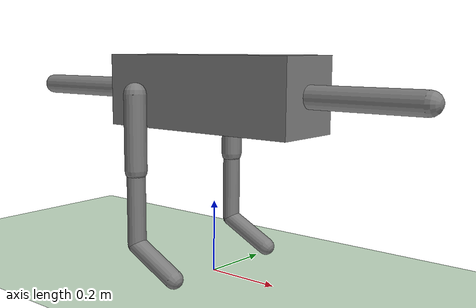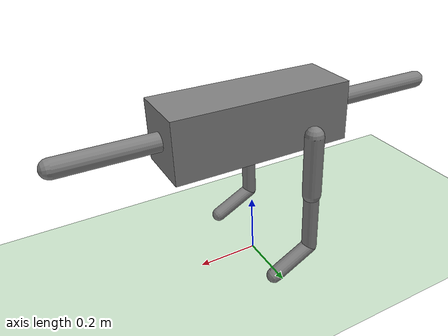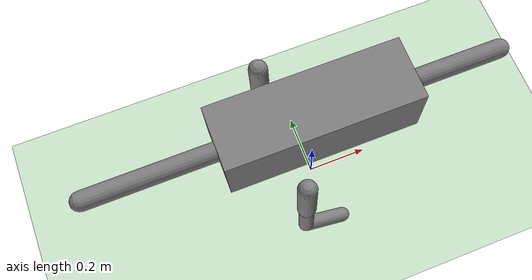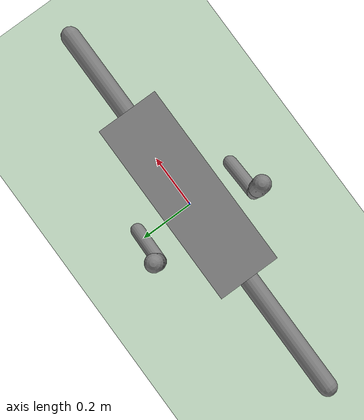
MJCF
<mujoco model="bird_biped">
  <compiler angle="radian" meshdir="meshes/"/>
  <option timestep="0.002" gravity="0 0 -9.81"/>

  <default>
    <joint damping="0.5" armature="0.01"/>
    <geom friction="1.2 0.1 0.1" condim="3"/>
  </default>

  <worldbody>
    <geom name="floor" type="plane" size="10 10 0.1" rgba="0.8 0.9 0.8 1"/>

    <body name="body" pos="0 0 0.5">
      <freejoint name="root"/>
      <geom name="body_geom"  type="box" size= "0.3 0.1 0.1" mass="1.5"/>
      <site name="imu_site" pos="0 0 0"/>

      <body name="rleg1" pos="-0.10 0.2 0">
        <joint name="right_hip" type="hinge"
          axis="0 -1 0"
          range="-0.5 1.3"
          armature="0.0245"
          damping="0.1"
          frictionloss="0.2"
         />
        <geom type="capsule" fromto="0 0 0 0 0 -0.2" size="0.03" mass="0.5"/>

        <body name="rleg2" pos="0 0 -0.2">
          <joint name="right_knee" type="hinge"
          axis="0 1 0"
          range="-0.2 2"
          armature="0.0245"
          damping="0.1"
          frictionloss="0.2"
          />
          <geom type="capsule" fromto="0 0 0 0 0 -0.2" size="0.025" mass="0.3"/>

          <body name="rleg3" pos="0 0 -0.2" euler = "0 -1.1 0">
            <joint name="right_feet" type="hinge" axis="0 1 0"
            limited="true" range="-0.5 0.8"
            stiffness="5" damping="1.5" springref="0.2"/>
            <geom type="capsule" fromto="0 0 0 0 0 -0.15" size="0.025" mass="0.1"/>
          </body>

        </body>

      </body>

      <body name="lleg1" pos="-0.10 -0.2 0">
        <joint name="left_hip" type="hinge"
          axis="0 -1 0"
          range="-0.5 1.3"
          armature="0.0245"
          damping="0.1"
          frictionloss="0.2"
         />
        <geom type="capsule" fromto="0 0 0 0 0 -0.2" size="0.03" mass="0.5"/>

        <body name="lleg2" pos="0 0 -0.2">
          <joint name="left_knee" type="hinge"
          axis="0 1 0"
          range="-0.2 2"
          armature="0.0245"
          damping="0.1"
          frictionloss="0.2"
          />

          <geom type="capsule" fromto="0 0 0 0 0 -0.2" size="0.025" mass="0.3"/>

          <body name="lleg3" pos="0 0 -0.2" euler = "0 -1.1 0">
            <joint name="left_feet" type="hinge" axis="0 1 0"
            limited="true" range="-0.5 0.8"
            stiffness="5" damping="1.5" springref="0.2"/>
            <geom type="capsule" fromto="0 0 0 0 0 -0.15" size="0.025" mass="0.1"/>
          </body>

        </body>

      </body>

      <body name="tail" pos="-0.3 0 0">
        <joint name="tail_body" type="hinge" axis="0 0 1" range="-0.6 0.6"/>
        <geom name="tail_geom" type="capsule" fromto="0 0 0 -0.4 0 0" size="0.03" mass="0.4"/>
      </body>

      <body name="neck" pos="0.3 0 0">
        <joint name="neck_body" type="hinge" axis="0 -1 0" range="0 1.57"/>
        <geom name="neck_geom" type="capsule" fromto="0 0 0 0.3 0 0" size="0.03" mass="0.5"/>
      </body>

    </body>
  </worldbody>

  <actuator>

  <position name="act_l_hip" joint="left_hip" kp="80" kv="3" ctrlrange="-0.5 1.3" forcerange="-15 15"/>
  <position name="act_l_knee" joint="left_knee" kp="80" kv="3" ctrlrange="-0.2 2" forcerange="-15 15"/>

  <position name="act_r_hip" joint="right_hip" kp="80" kv="3" ctrlrange="-0.5 1.3" forcerange="-15 15"/>
  <position name="act_r_knee" joint="right_knee" kp="80" kv="3" ctrlrange="-0.2 2" forcerange="-15 15"/>

  <position name="act_tail" joint="tail_body" kp="15" kv="1" ctrlrange="-0.6 0.6" forcerange="-15 15"/>
  <position name="act_neck" joint="neck_body" kp="15" kv="1" ctrlrange="0 1.57" forcerange="-15 15"/>
  </actuator>

  <keyframe>
    <key name="stand" qpos="0 0 0.5 1 0 0 0  0.4 0.8 0.0  0.4 0.8 0.0  0.0 0.7"/>
  </keyframe>

  <sensor>
    <!-- IMU Sensors attached to the torso site -->
    <accelerometer name="imu_accel" site="imu_site"/>
    <gyro name="imu_gyro" site="imu_site"/>
    <framequat name="imu_quat" objtype="site" objname="imu_site"/>

    <!-- Joint Encoders (Position & Velocity) -->
    <jointpos name="jp_l_hip" joint="left_hip"/>
    <jointvel name="jv_l_hip" joint="left_hip"/>

    <jointpos name="jp_l_knee" joint="left_knee"/>
    <jointvel name="jv_l_knee" joint="left_knee"/>

    <jointpos name="jp_r_hip" joint="right_hip"/>
    <jointvel name="jv_r_hip" joint="right_hip"/>

    <jointpos name="jp_r_knee" joint="right_knee"/>
    <jointvel name="jv_r_knee" joint="right_knee"/>

    <jointpos name="jp_tail" joint="tail_body"/>
    <jointvel name="jv_tail" joint="tail_body"/>
    <jointpos name="jp_neck" joint="neck_body"/>
    <jointvel name="jv_neck" joint="neck_body"/>
  </sensor>
</mujoco>
